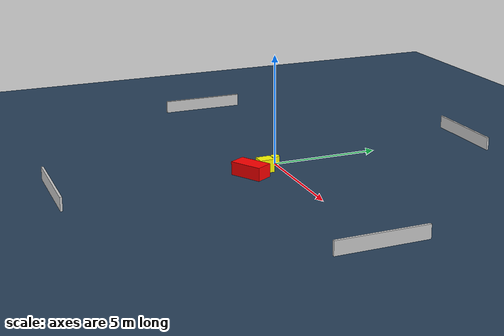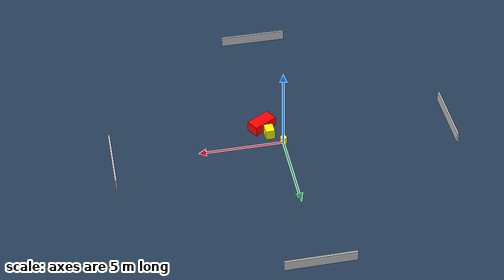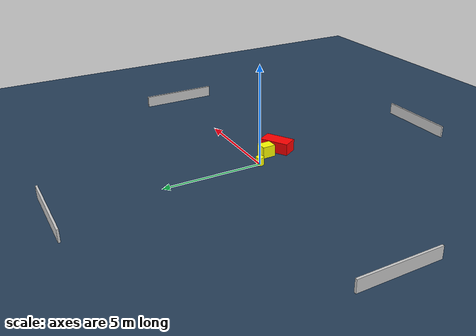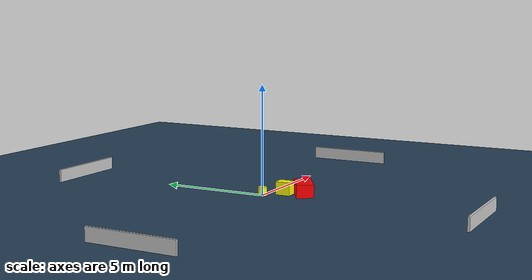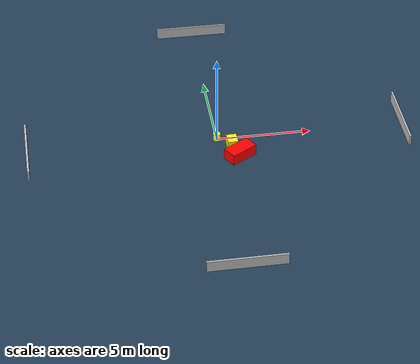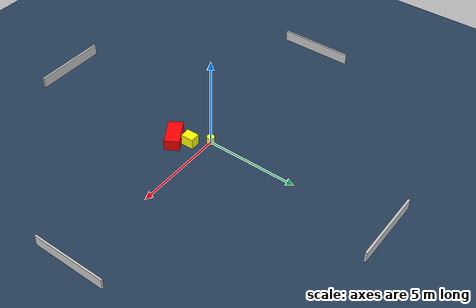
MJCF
<?xml version="1.0" ?>
<mujoco model="generated_environment">
  <option timestep="0.01" integrator="RK4" cone="elliptic"/>
  <default>
    <geom density="1"/>
  </default>
  <asset>
    <texture builtin="gradient" height="3072" name="skybox" rgb1="0.3 0.5 0.7" rgb2="0 0 0" type="skybox" width="512"/>
    <texture builtin="checker" height="300" name="groundplane" rgb1="0.2 0.3 0.4" rgb2="0.1 0.2 0.3" type="2d" width="300"/>
    <material name="groundplane" reflectance="0.2" texrepeat="5 5" texture="groundplane"/>
  </asset>
  <worldbody>
    <light dir="0 0 -1" directional="true" pos="0 0 1.5"/>
    <geom condim="3" friction="0.5 0.005 0.001" material="groundplane" name="floor" pos="0 0 0" size="0 0 0.05" type="plane"/>
    <body name="walls">
      <geom name="wall_1" condim="4" pos="-10.0 0.0 0.3" rgba="0.800000011920929 0.800000011920929 0.800000011920929 1.0" size="0.05 2.0 0.3" type="box"/>
      <geom name="wall_2" condim="4" pos="10.0 0.0 0.3" rgba="0.800000011920929 0.800000011920929 0.800000011920929 1.0" size="0.05 2.0 0.3" type="box"/>
      <geom name="wall_3" condim="4" pos="0.0 -10.0 0.3" rgba="0.800000011920929 0.800000011920929 0.800000011920929 1.0" size="2.0 0.05 0.3" type="box"/>
      <geom name="wall_4" condim="4" pos="0.0 10.0 0.3" rgba="0.800000011920929 0.800000011920929 0.800000011920929 1.0" size="2.0 0.05 0.3" type="box"/>
    </body>
    <body name="robot">
      <joint name="joint_x" type="slide" pos="0 0 0" axis="1 0 0"/>
      <joint name="joint_y" type="slide" pos="0 0 0" axis="0 1 0"/>
      <geom name="robot" type="cylinder" pos="0.0 0.0 0.2" size="0.2 0.2 0.0" mass="5.0" friction="1.0 0.005 0.0001" condim="4" rgba="1.0 1.0 0.0 1.0"/>
    </body>
    <body name="obstacle_1_movable">
      <geom name="obstacle_1_movable" condim="4" pos="0.70591598522559 -0.7704074182150396 0.3" euler="0 0 181.58537849810708" friction="0.0 0.005 0.001" rgba="1.0 1.0 0.0 1.0" size="0.2745341069038074 0.33657199257536163 0.3" type="box" mass="0.1"/>
      <joint type="free"/>
    </body>
    <body name="obstacle_2_static">
      <geom name="obstacle_2_static" condim="4" pos="1.0031036176284038 -1.576036755117539 0.3" euler="0 0 120.63227711853096" friction="0.0 0.005 0.001" rgba="1.0 0.0 0.0 1.0" size="0.3898315915196311 0.7563757540476463 0.3" type="box"/>
    </body>
  </worldbody>
  <actuator>
    <motor name="actuator_x" joint="joint_x" gear="1" ctrlrange="-1 1"/>
    <motor name="actuator_y" joint="joint_y" gear="1" ctrlrange="-1 1"/>
  </actuator>
</mujoco>
